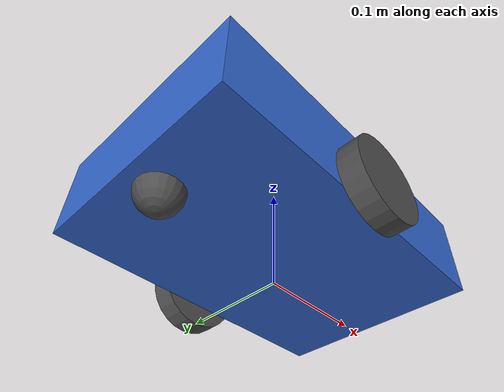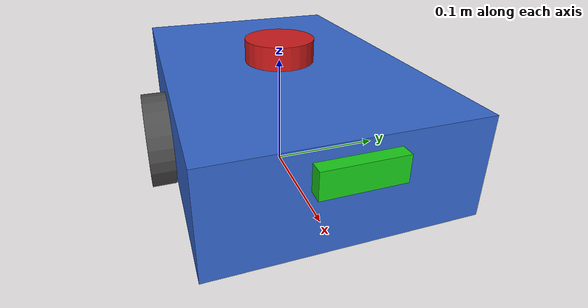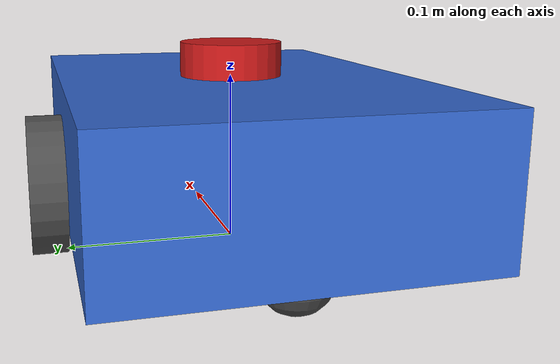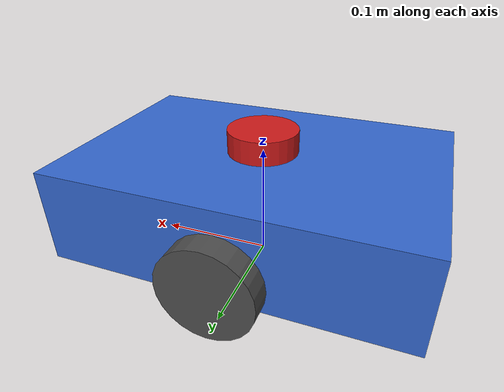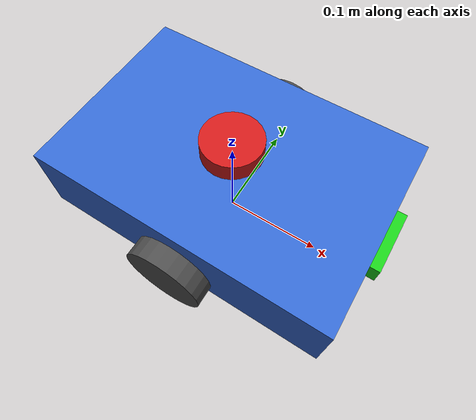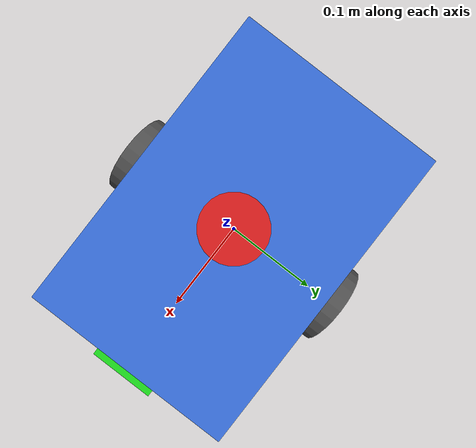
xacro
<?xml version="1.0"?>
<robot xmlns:xacro="http://www.ros.org/wiki/xacro" name="swarm_bot">

  <!-- ======================== ARGUMENTS ======================== -->
  <xacro:arg name="robot_ns" default="robot_1"/>
  <xacro:property name="ns" value="$(arg robot_ns)"/>

  <!-- ======================== PROPERTIES ======================== -->
  <!-- Chassis -->
  <xacro:property name="chassis_length" value="0.30"/>
  <xacro:property name="chassis_width"  value="0.20"/>
  <xacro:property name="chassis_height" value="0.08"/>
  <xacro:property name="chassis_mass"   value="2.0"/>
  <xacro:property name="chassis_z"      value="0.06"/>

  <!-- Drive wheels -->
  <xacro:property name="wheel_radius" value="0.04"/>
  <xacro:property name="wheel_width"  value="0.02"/>
  <xacro:property name="wheel_mass"   value="0.2"/>
  <xacro:property name="wheel_y_offset" value="0.11"/>

  <!-- Caster -->
  <xacro:property name="caster_radius" value="0.02"/>

  <!-- LiDAR -->
  <xacro:property name="lidar_z" value="0.12"/>

  <!-- Camera -->
  <xacro:property name="camera_x" value="0.16"/>
  <xacro:property name="camera_z" value="0.10"/>

  <!-- ======================== MATERIALS ======================== -->
  <material name="blue">
    <color rgba="0.2 0.4 0.8 1.0"/>
  </material>
  <material name="dark_grey">
    <color rgba="0.3 0.3 0.3 1.0"/>
  </material>
  <material name="red">
    <color rgba="0.8 0.1 0.1 1.0"/>
  </material>
  <material name="green">
    <color rgba="0.1 0.8 0.1 1.0"/>
  </material>

  <!-- ======================== INERTIA MACROS ======================== -->
  <xacro:macro name="box_inertia" params="m w h d">
    <inertial>
      <mass value="${m}"/>
      <inertia ixx="${(m/12)*(h*h+d*d)}" ixy="0" ixz="0"
               iyy="${(m/12)*(w*w+d*d)}" iyz="0"
               izz="${(m/12)*(w*w+h*h)}"/>
    </inertial>
  </xacro:macro>

  <xacro:macro name="cylinder_inertia" params="m r h">
    <inertial>
      <mass value="${m}"/>
      <inertia ixx="${(m/12)*(3*r*r+h*h)}" ixy="0" ixz="0"
               iyy="${(m/12)*(3*r*r+h*h)}" iyz="0"
               izz="${(m/2)*r*r}"/>
    </inertial>
  </xacro:macro>

  <xacro:macro name="sphere_inertia" params="m r">
    <inertial>
      <mass value="${m}"/>
      <inertia ixx="${(2*m/5)*r*r}" ixy="0" ixz="0"
               iyy="${(2*m/5)*r*r}" iyz="0"
               izz="${(2*m/5)*r*r}"/>
    </inertial>
  </xacro:macro>

  <!-- ======================== BASE FOOTPRINT ======================== -->
  <link name="base_footprint"/>

  <joint name="base_joint" type="fixed">
    <parent link="base_footprint"/>
    <child link="base_link"/>
    <origin xyz="0 0 ${chassis_z}" rpy="0 0 0"/>
  </joint>

  <!-- ======================== CHASSIS ======================== -->
  <link name="base_link">
    <visual>
      <geometry>
        <box size="${chassis_length} ${chassis_width} ${chassis_height}"/>
      </geometry>
      <material name="blue"/>
    </visual>
    <collision>
      <geometry>
        <box size="${chassis_length} ${chassis_width} ${chassis_height}"/>
      </geometry>
    </collision>
    <xacro:box_inertia m="${chassis_mass}" w="${chassis_width}" h="${chassis_height}" d="${chassis_length}"/>
  </link>

  <gazebo reference="base_link">
    <material>Gazebo/Blue</material>
  </gazebo>

  <!-- ======================== WHEEL MACRO ======================== -->
  <xacro:macro name="drive_wheel" params="prefix y_offset">
    <link name="${prefix}_wheel">
      <visual>
        <geometry>
          <cylinder radius="${wheel_radius}" length="${wheel_width}"/>
        </geometry>
        <material name="dark_grey"/>
      </visual>
      <collision>
        <geometry>
          <cylinder radius="${wheel_radius}" length="${wheel_width}"/>
        </geometry>
      </collision>
      <xacro:cylinder_inertia m="${wheel_mass}" r="${wheel_radius}" h="${wheel_width}"/>
    </link>

    <joint name="${prefix}_wheel_joint" type="continuous">
      <parent link="base_link"/>
      <child link="${prefix}_wheel"/>
      <origin xyz="0 ${y_offset} ${-chassis_z + wheel_radius}" rpy="${-pi/2} 0 0"/>
      <axis xyz="0 0 1"/>
      <dynamics damping="0.1" friction="0.1"/>
    </joint>

    <gazebo reference="${prefix}_wheel">
      <material>Gazebo/DarkGrey</material>
      <mu1>1.0</mu1>
      <mu2>1.0</mu2>
    </gazebo>
  </xacro:macro>

  <xacro:drive_wheel prefix="left"  y_offset="${wheel_y_offset}"/>
  <xacro:drive_wheel prefix="right" y_offset="${-wheel_y_offset}"/>

  <!-- ======================== CASTER WHEEL ======================== -->
  <link name="caster_wheel">
    <visual>
      <geometry>
        <sphere radius="${caster_radius}"/>
      </geometry>
      <material name="dark_grey"/>
    </visual>
    <collision>
      <geometry>
        <sphere radius="${caster_radius}"/>
      </geometry>
    </collision>
    <xacro:sphere_inertia m="0.05" r="${caster_radius}"/>
  </link>

  <joint name="caster_wheel_joint" type="fixed">
    <parent link="base_link"/>
    <child link="caster_wheel"/>
    <origin xyz="${-chassis_length/2 + caster_radius + 0.01} 0 ${-chassis_z + caster_radius}" rpy="0 0 0"/>
  </joint>

  <gazebo reference="caster_wheel">
    <material>Gazebo/DarkGrey</material>
    <mu1>0.0</mu1>
    <mu2>0.0</mu2>
  </gazebo>

  <!-- ======================== LIDAR SENSOR ======================== -->
  <link name="lidar_link">
    <visual>
      <geometry>
        <cylinder radius="0.03" length="0.02"/>
      </geometry>
      <material name="red"/>
    </visual>
    <collision>
      <geometry>
        <cylinder radius="0.03" length="0.02"/>
      </geometry>
    </collision>
    <xacro:cylinder_inertia m="0.05" r="0.03" h="0.02"/>
  </link>

  <joint name="lidar_joint" type="fixed">
    <parent link="base_link"/>
    <child link="lidar_link"/>
    <origin xyz="0 0 ${chassis_height/2 + 0.01}" rpy="0 0 0"/>
  </joint>

  <gazebo reference="lidar_link">
    <material>Gazebo/Red</material>
    <sensor type="ray" name="lidar_sensor">
      <pose>0 0 0 0 0 0</pose>
      <visualize>true</visualize>
      <update_rate>10</update_rate>
      <ray>
        <scan>
          <horizontal>
            <samples>360</samples>
            <resolution>1</resolution>
            <min_angle>-3.14159</min_angle>
            <max_angle>3.14159</max_angle>
          </horizontal>
        </scan>
        <range>
          <min>0.12</min>
          <max>3.5</max>
          <resolution>0.01</resolution>
        </range>
        <noise>
          <type>gaussian</type>
          <mean>0.0</mean>
          <stddev>0.01</stddev>
        </noise>
      </ray>
      <plugin name="gazebo_ros_lidar" filename="libgazebo_ros_ray_sensor.so">
        <ros>
          <namespace>${ns}</namespace>
          <remapping>~/out:=scan</remapping>
        </ros>
        <output_type>sensor_msgs/LaserScan</output_type>
        <frame_name>${ns}/lidar_link</frame_name>
      </plugin>
    </sensor>
  </gazebo>

  <!-- ======================== RGB-D CAMERA ======================== -->
  <link name="camera_link">
    <visual>
      <geometry>
        <box size="0.02 0.06 0.02"/>
      </geometry>
      <material name="green"/>
    </visual>
    <collision>
      <geometry>
        <box size="0.02 0.06 0.02"/>
      </geometry>
    </collision>
    <xacro:box_inertia m="0.03" w="0.06" h="0.02" d="0.02"/>
  </link>

  <joint name="camera_joint" type="fixed">
    <parent link="base_link"/>
    <child link="camera_link"/>
    <origin xyz="${chassis_length/2} 0 ${chassis_height/4}" rpy="0 0 0"/>
  </joint>

  <!-- Camera optical frame (ROS convention: Z forward, X right, Y down) -->
  <link name="camera_optical_link"/>
  <joint name="camera_optical_joint" type="fixed">
    <parent link="camera_link"/>
    <child link="camera_optical_link"/>
    <origin xyz="0 0 0" rpy="${-pi/2} 0 ${-pi/2}"/>
  </joint>

  <gazebo reference="camera_link">
    <material>Gazebo/Green</material>
    <sensor type="depth" name="rgbd_camera">
      <update_rate>10</update_rate>
      <camera name="camera">
        <horizontal_fov>1.047</horizontal_fov>
        <image>
          <width>640</width>
          <height>480</height>
          <format>R8G8B8</format>
        </image>
        <clip>
          <near>0.05</near>
          <far>8.0</far>
        </clip>
        <noise>
          <type>gaussian</type>
          <mean>0.0</mean>
          <stddev>0.007</stddev>
        </noise>
      </camera>
      <plugin name="gazebo_ros_camera" filename="libgazebo_ros_camera.so">
        <ros>
          <namespace>${ns}</namespace>
        </ros>
        <camera_name>camera</camera_name>
        <frame_name>${ns}/camera_optical_link</frame_name>
        <hack_baseline>0.07</hack_baseline>
        <min_depth>0.05</min_depth>
        <max_depth>8.0</max_depth>
      </plugin>
    </sensor>
  </gazebo>

  <!-- ======================== DIFFERENTIAL DRIVE PLUGIN ======================== -->
  <!-- RAW differential drive — NO obstacle avoidance, NO path planning -->
  <gazebo>
    <plugin name="diff_drive_controller" filename="libgazebo_ros_diff_drive.so">
      <ros>
        <namespace>${ns}</namespace>
      </ros>
      <update_rate>30</update_rate>
      <left_joint>left_wheel_joint</left_joint>
      <right_joint>right_wheel_joint</right_joint>
      <wheel_separation>${2 * wheel_y_offset}</wheel_separation>
      <wheel_diameter>${2 * wheel_radius}</wheel_diameter>
      <max_wheel_torque>5.0</max_wheel_torque>
      <max_wheel_acceleration>2.0</max_wheel_acceleration>
      <command_topic>cmd_vel</command_topic>
      <publish_odom>true</publish_odom>
      <publish_odom_tf>true</publish_odom_tf>
      <publish_wheel_tf>false</publish_wheel_tf>
      <odometry_topic>odom</odometry_topic>
      <odometry_frame>${ns}/odom</odometry_frame>
      <robot_base_frame>${ns}/base_footprint</robot_base_frame>
    </plugin>
  </gazebo>

</robot>
